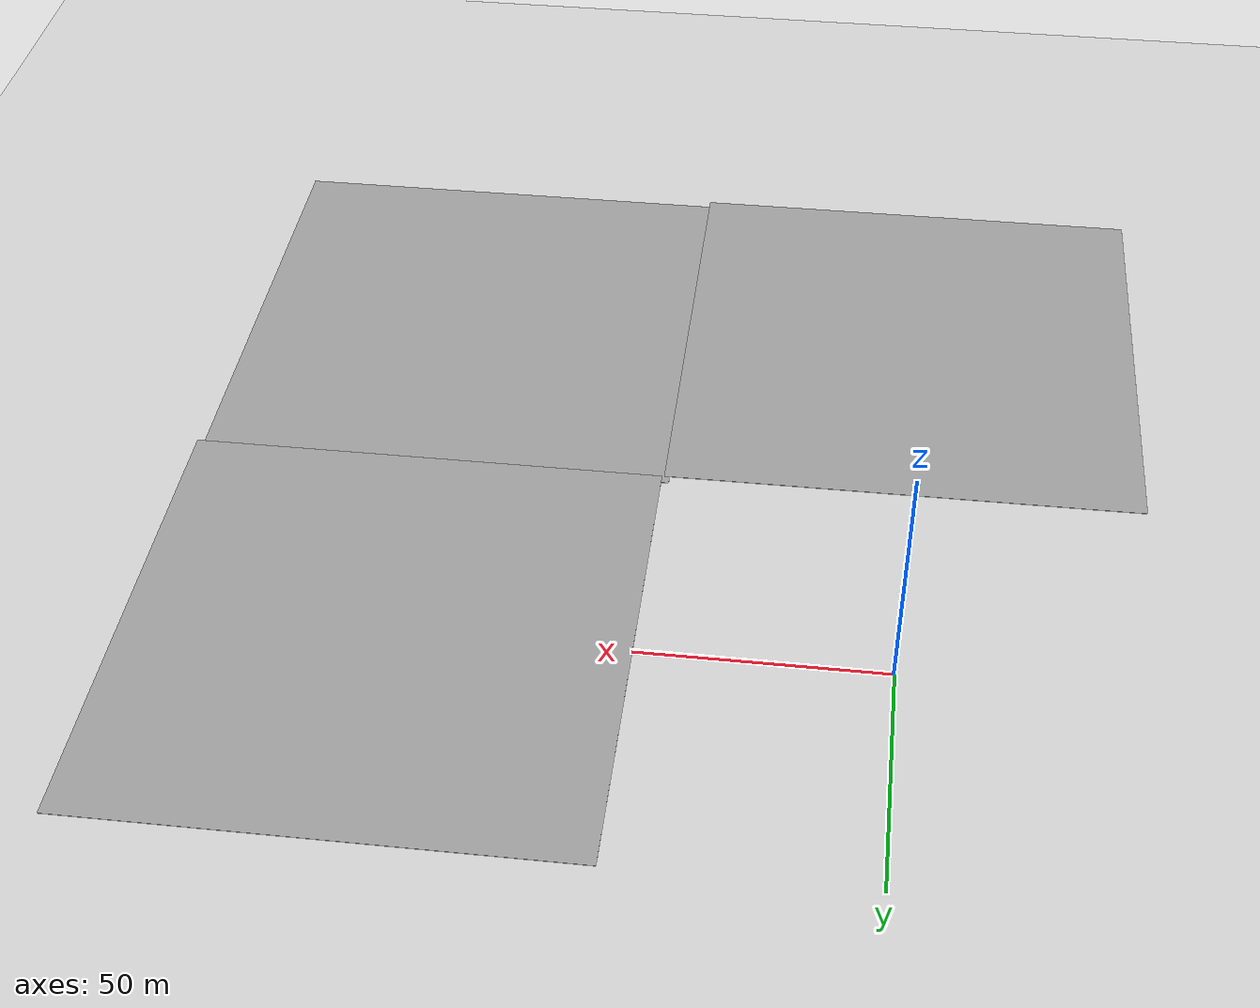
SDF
<sdf version="1.4">
 <world name="default">
  <light name="sun" type="directional">
   <pose>0 0 10 0 -0 0</pose>
   <diffuse>0.8 0.8 0.8 1</diffuse>
   <specular>0.2 0.2 0.2 1</specular>
   <attenuation>
    <range>1000</range>
    <constant>0.9</constant>
    <linear>0.01</linear>
    <quadratic>0.001</quadratic>
   </attenuation>
   <direction>-0.5 0.1 -0.9</direction>
  </light>
  <model name="ground_plane">
   <static>1</static>
   <link name="link">
    <collision name="collision">
     <geometry><plane><normal>0 0 1</normal><size>100 100</size></plane></geometry>
     <surface><friction><ode><mu>100</mu><mu2>50</mu2></ode></friction></surface>
    </collision>
    <visual name="visual">
     <cast_shadows>0</cast_shadows>
     <geometry><plane><normal>0 0 1</normal><size>100 100</size></plane></geometry>
     <material>
      <script><uri>file://media/materials/scripts/gazebo.material</uri><name>Gazebo/Grey</name></script>
     </material>
    </visual>
    <velocity_decay><linear>0</linear><angular>0</angular></velocity_decay>
   </link>
  </model>
  <physics type="ode">
   <max_step_size>0.001</max_step_size>
   <real_time_factor>1</real_time_factor>
   <real_time_update_rate>1000</real_time_update_rate>
   <gravity>0 0 -9.8</gravity>
  </physics>
  <scene><ambient>0.4 0.4 0.4 1</ambient><background>0.7 0.7 0.7 1</background><shadows>1</shadows></scene>
  <model name="ground_plane_0">
   <static>1</static>
   <link name="link">
    <collision name="collision">
     <geometry><plane><normal>0 0 1</normal><size>100 100</size></plane></geometry>
     <surface><friction><ode><mu>100</mu><mu2>50</mu2></ode></friction></surface>
    </collision>
    <visual name="visual">
     <cast_shadows>0</cast_shadows>
     <geometry><plane><normal>0 0 1</normal><size>100 100</size></plane></geometry>
     <material>
      <script><uri>file://media/materials/scripts/gazebo.material</uri><name>Gazebo/Grey</name></script>
     </material>
    </visual>
    <velocity_decay><linear>0</linear><angular>0</angular></velocity_decay>
   </link>
   <pose>-0.432424 -100 0 0 -0 0</pose>
  </model>
  <model name="ground_plane_1">
   <static>1</static>
   <link name="link">
    <collision name="collision">
     <geometry><plane><normal>0 0 1</normal><size>100 100</size></plane></geometry>
     <surface><friction><ode><mu>100</mu><mu2>50</mu2></ode></friction></surface>
    </collision>
    <visual name="visual">
     <cast_shadows>0</cast_shadows>
     <geometry><plane><normal>0 0 1</normal><size>100 100</size></plane></geometry>
     <material>
      <script><uri>file://media/materials/scripts/gazebo.material</uri><name>Gazebo/Grey</name></script>
     </material>
    </visual>
    <velocity_decay><linear>0</linear><angular>0</angular></velocity_decay>
   </link>
   <pose>100 0 0 0 -0 0</pose>
  </model>
  <model name="ground_plane_2">
   <static>1</static>
   <link name="link">
    <collision name="collision">
     <geometry><plane><normal>0 0 1</normal><size>100 100</size></plane></geometry>
     <surface><friction><ode><mu>100</mu><mu2>50</mu2></ode></friction></surface>
    </collision>
    <visual name="visual">
     <cast_shadows>0</cast_shadows>
     <geometry><plane><normal>0 0 1</normal><size>100 100</size></plane></geometry>
     <material>
      <script><uri>file://media/materials/scripts/gazebo.material</uri><name>Gazebo/Grey</name></script>
     </material>
    </visual>
    <velocity_decay><linear>0</linear><angular>0</angular></velocity_decay>
   </link>
   <pose>98.4083 -98 0 0 -0 0</pose>
  </model>
 </world>
</sdf>
